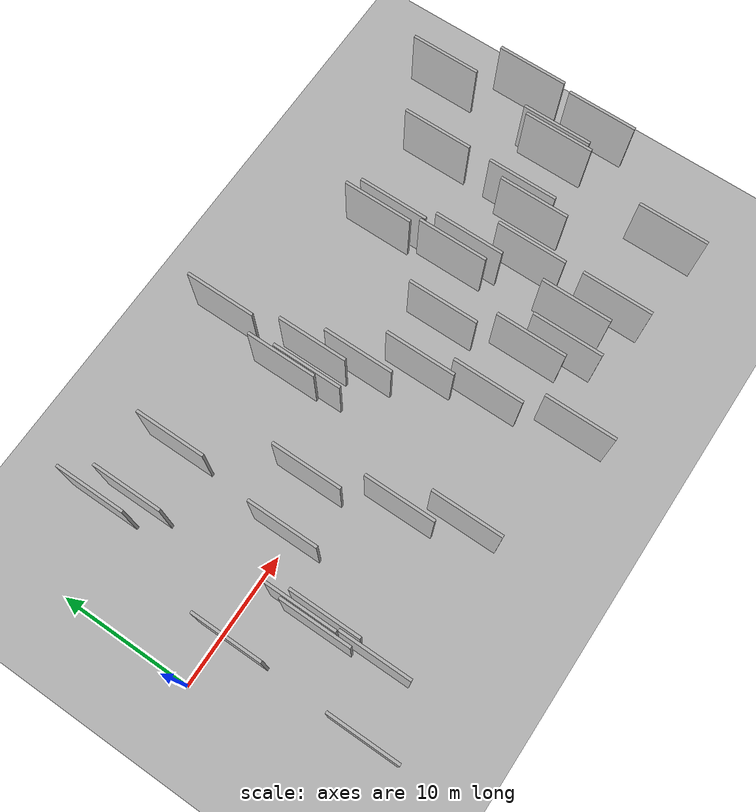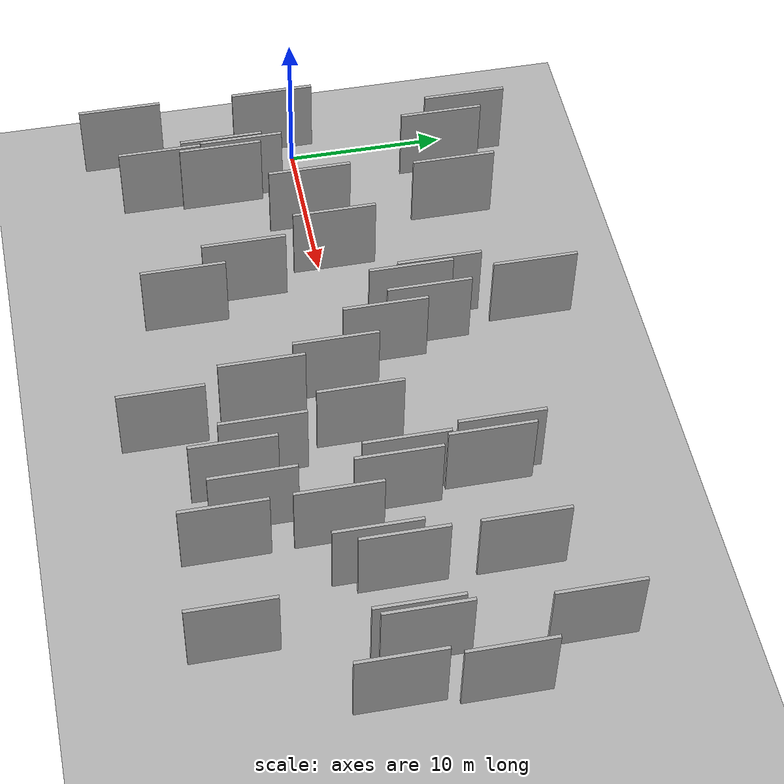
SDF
<?xml version="1.0" encoding="utf-8"?>

<sdf version="1.6">

   <world name="default">

      <gui fullscreen="0">

         <camera name="user_camera">

            <pose>-15 0 4.57585 0 0 0</pose>

            <view_controller>orbit</view_controller>

         </camera>

      </gui>

      <scene>

         <sky>

           <clouds>

             <speed>12</speed>

           </clouds>

         </sky>

         <ambient>0.4 0.4 0.4 1</ambient>

         <background>0.7 0.7 0.7 1</background>

         <shadows>1</shadows>

      </scene>

      <gravity>0 0 -9.8066</gravity>

      <magnetic_field>6e-06 2.3e-05 -4.2e-05</magnetic_field>

      <physics default="0" name="default_physics" type="ode">

         <ode>

            <solver>

               <type>quick</type>

               <iters>10</iters>

               <sor>1.0</sor>

               <use_dynamic_moi_rescaling>0</use_dynamic_moi_rescaling>

            </solver>

            <constraints>

               <cfm>0</cfm>

               <erp>0.2</erp>

               <contact_max_correcting_vel>100</contact_max_correcting_vel>

               <contact_surface_layer>0.001</contact_surface_layer>

            </constraints>

         </ode>

         <max_step_size>0.004</max_step_size>

         <real_time_factor>1</real_time_factor>

         <real_time_update_rate>250</real_time_update_rate>

      </physics>

      <light name="sun" type="directional">

         <cast_shadows>1</cast_shadows>

         <pose>0 0 10 0 0 0</pose>

         <diffuse>0.8 0.8 0.8 1</diffuse>

         <specular>0.2 0.2 0.2 1</specular>

         <attenuation>

            <range>1000</range>

            <constant>0.9</constant>

            <linear>0.01</linear>

            <quadratic>0.001</quadratic>

         </attenuation>

         <direction>-0.5 0.1 -0.9</direction>

      </light>

      <include>

         <name>ground_plane_1</name>

         <uri>model://HANNAS_ground_plane</uri>

         <pose>0 0 0  0 0 0</pose>

      </include>

      <include>

         <name>ground_plane_2</name>

         <uri>model://HANNAS_ground_plane</uri>

         <pose>100 0 0  0 0 0</pose>

      </include>

      <model name="HANNAS_wall_1">

         <static>1</static>

         <pose frame="">45.5074 3.5832 5.0 0.000000 0.000000 1.570796</pose>

         <link name="link">

            <pose frame="">0 0 2.50 0 0 0</pose>

            <collision name="collision">

               <geometry>

                  <box>

                     <size>5.00 0.2 5.00</size>

                  </box>

               </geometry>

               <max_contacts>10</max_contacts>

               <surface>

                  <contact>

                     <ode/>

                  </contact>

                  <bounce/>

                  <friction>

                     <torsional>

                        <ode/>

                     </torsional>

                     <ode/>

                  </friction>

               </surface>

            </collision>

            <visual name="visual">

               <cast_shadows>0</cast_shadows>

               <geometry>

                  <box>

                     <size>5.00 0.2 5.00</size>

                  </box>

               </geometry>

               <material>

                  <script>

                     <uri>model://HANNAS_wall/materials/scripts</uri>

                     <uri>model://HANNAS_wall/materials/textures</uri>

                     <name>vrc/HANNAS_wall</name>

                  </script>

               </material>

            </visual>

            <self_collide>0</self_collide>

            <enable_wind>0</enable_wind>

            <kinematic>0</kinematic>

         </link>

      </model>

      <model name="HANNAS_wall_2">

         <static>1</static>

         <pose frame="">19.2828 5.5503 5.0 0.000000 0.000000 1.570796</pose>

         <link name="link">

            <pose frame="">0 0 2.50 0 0 0</pose>

            <collision name="collision">

               <geometry>

                  <box>

                     <size>5.00 0.2 5.00</size>

                  </box>

               </geometry>

               <max_contacts>10</max_contacts>

               <surface>

                  <contact>

                     <ode/>

                  </contact>

                  <bounce/>

                  <friction>

                     <torsional>

                        <ode/>

                     </torsional>

                     <ode/>

                  </friction>

               </surface>

            </collision>

            <visual name="visual">

               <cast_shadows>0</cast_shadows>

               <geometry>

                  <box>

                     <size>5.00 0.2 5.00</size>

                  </box>

               </geometry>

               <material>

                  <script>

                     <uri>model://HANNAS_wall/materials/scripts</uri>

                     <uri>model://HANNAS_wall/materials/textures</uri>

                     <name>vrc/HANNAS_wall</name>

                  </script>

               </material>

            </visual>

            <self_collide>0</self_collide>

            <enable_wind>0</enable_wind>

            <kinematic>0</kinematic>

         </link>

      </model>

      <model name="HANNAS_wall_3">

         <static>1</static>

         <pose frame="">42.5589 -0.1111 5.0 0.000000 0.000000 1.570796</pose>

         <link name="link">

            <pose frame="">0 0 2.50 0 0 0</pose>

            <collision name="collision">

               <geometry>

                  <box>

                     <size>5.00 0.2 5.00</size>

                  </box>

               </geometry>

               <max_contacts>10</max_contacts>

               <surface>

                  <contact>

                     <ode/>

                  </contact>

                  <bounce/>

                  <friction>

                     <torsional>

                        <ode/>

                     </torsional>

                     <ode/>

                  </friction>

               </surface>

            </collision>

            <visual name="visual">

               <cast_shadows>0</cast_shadows>

               <geometry>

                  <box>

                     <size>5.00 0.2 5.00</size>

                  </box>

               </geometry>

               <material>

                  <script>

                     <uri>model://HANNAS_wall/materials/scripts</uri>

                     <uri>model://HANNAS_wall/materials/textures</uri>

                     <name>vrc/HANNAS_wall</name>

                  </script>

               </material>

            </visual>

            <self_collide>0</self_collide>

            <enable_wind>0</enable_wind>

            <kinematic>0</kinematic>

         </link>

      </model>

      <model name="HANNAS_wall_4">

         <static>1</static>

         <pose frame="">10.7741 -0.6381 5.0 0.000000 0.000000 1.570796</pose>

         <link name="link">

            <pose frame="">0 0 2.50 0 0 0</pose>

            <collision name="collision">

               <geometry>

                  <box>

                     <size>5.00 0.2 5.00</size>

                  </box>

               </geometry>

               <max_contacts>10</max_contacts>

               <surface>

                  <contact>

                     <ode/>

                  </contact>

                  <bounce/>

                  <friction>

                     <torsional>

                        <ode/>

                     </torsional>

                     <ode/>

                  </friction>

               </surface>

            </collision>

            <visual name="visual">

               <cast_shadows>0</cast_shadows>

               <geometry>

                  <box>

                     <size>5.00 0.2 5.00</size>

                  </box>

               </geometry>

               <material>

                  <script>

                     <uri>model://HANNAS_wall/materials/scripts</uri>

                     <uri>model://HANNAS_wall/materials/textures</uri>

                     <name>vrc/HANNAS_wall</name>

                  </script>

               </material>

            </visual>

            <self_collide>0</self_collide>

            <enable_wind>0</enable_wind>

            <kinematic>0</kinematic>

         </link>

      </model>

      <model name="HANNAS_wall_5">

         <static>1</static>

         <pose frame="">6.0708 9.9913 5.0 0.000000 0.000000 1.570796</pose>

         <link name="link">

            <pose frame="">0 0 2.50 0 0 0</pose>

            <collision name="collision">

               <geometry>

                  <box>

                     <size>5.00 0.2 5.00</size>

                  </box>

               </geometry>

               <max_contacts>10</max_contacts>

               <surface>

                  <contact>

                     <ode/>

                  </contact>

                  <bounce/>

                  <friction>

                     <torsional>

                        <ode/>

                     </torsional>

                     <ode/>

                  </friction>

               </surface>

            </collision>

            <visual name="visual">

               <cast_shadows>0</cast_shadows>

               <geometry>

                  <box>

                     <size>5.00 0.2 5.00</size>

                  </box>

               </geometry>

               <material>

                  <script>

                     <uri>model://HANNAS_wall/materials/scripts</uri>

                     <uri>model://HANNAS_wall/materials/textures</uri>

                     <name>vrc/HANNAS_wall</name>

                  </script>

               </material>

            </visual>

            <self_collide>0</self_collide>

            <enable_wind>0</enable_wind>

            <kinematic>0</kinematic>

         </link>

      </model>

      <model name="HANNAS_wall_6">

         <static>1</static>

         <pose frame="">25.0074 -5.8904 5.0 0.000000 0.000000 1.570796</pose>

         <link name="link">

            <pose frame="">0 0 2.50 0 0 0</pose>

            <collision name="collision">

               <geometry>

                  <box>

                     <size>5.00 0.2 5.00</size>

                  </box>

               </geometry>

               <max_contacts>10</max_contacts>

               <surface>

                  <contact>

                     <ode/>

                  </contact>

                  <bounce/>

                  <friction>

                     <torsional>

                        <ode/>

                     </torsional>

                     <ode/>

                  </friction>

               </surface>

            </collision>

            <visual name="visual">

               <cast_shadows>0</cast_shadows>

               <geometry>

                  <box>

                     <size>5.00 0.2 5.00</size>

                  </box>

               </geometry>

               <material>

                  <script>

                     <uri>model://HANNAS_wall/materials/scripts</uri>

                     <uri>model://HANNAS_wall/materials/textures</uri>

                     <name>vrc/HANNAS_wall</name>

                  </script>

               </material>

            </visual>

            <self_collide>0</self_collide>

            <enable_wind>0</enable_wind>

            <kinematic>0</kinematic>

         </link>

      </model>

      <model name="HANNAS_wall_7">

         <static>1</static>

         <pose frame="">20.3964 11.0199 5.0 0.000000 0.000000 1.570796</pose>

         <link name="link">

            <pose frame="">0 0 2.50 0 0 0</pose>

            <collision name="collision">

               <geometry>

                  <box>

                     <size>5.00 0.2 5.00</size>

                  </box>

               </geometry>

               <max_contacts>10</max_contacts>

               <surface>

                  <contact>

                     <ode/>

                  </contact>

                  <bounce/>

                  <friction>

                     <torsional>

                        <ode/>

                     </torsional>

                     <ode/>

                  </friction>

               </surface>

            </collision>

            <visual name="visual">

               <cast_shadows>0</cast_shadows>

               <geometry>

                  <box>

                     <size>5.00 0.2 5.00</size>

                  </box>

               </geometry>

               <material>

                  <script>

                     <uri>model://HANNAS_wall/materials/scripts</uri>

                     <uri>model://HANNAS_wall/materials/textures</uri>

                     <name>vrc/HANNAS_wall</name>

                  </script>

               </material>

            </visual>

            <self_collide>0</self_collide>

            <enable_wind>0</enable_wind>

            <kinematic>0</kinematic>

         </link>

      </model>

      <model name="HANNAS_wall_8">

         <static>1</static>

         <pose frame="">31.2553 6.4635 5.0 0.000000 0.000000 1.570796</pose>

         <link name="link">

            <pose frame="">0 0 2.50 0 0 0</pose>

            <collision name="collision">

               <geometry>

                  <box>

                     <size>5.00 0.2 5.00</size>

                  </box>

               </geometry>

               <max_contacts>10</max_contacts>

               <surface>

                  <contact>

                     <ode/>

                  </contact>

                  <bounce/>

                  <friction>

                     <torsional>

                        <ode/>

                     </torsional>

                     <ode/>

                  </friction>

               </surface>

            </collision>

            <visual name="visual">

               <cast_shadows>0</cast_shadows>

               <geometry>

                  <box>

                     <size>5.00 0.2 5.00</size>

                  </box>

               </geometry>

               <material>

                  <script>

                     <uri>model://HANNAS_wall/materials/scripts</uri>

                     <uri>model://HANNAS_wall/materials/textures</uri>

                     <name>vrc/HANNAS_wall</name>

                  </script>

               </material>

            </visual>

            <self_collide>0</self_collide>

            <enable_wind>0</enable_wind>

            <kinematic>0</kinematic>

         </link>

      </model>

      <model name="HANNAS_wall_9">

         <static>1</static>

         <pose frame="">7.9255 -5.6642 5.0 0.000000 0.000000 1.570796</pose>

         <link name="link">

            <pose frame="">0 0 2.50 0 0 0</pose>

            <collision name="collision">

               <geometry>

                  <box>

                     <size>5.00 0.2 5.00</size>

                  </box>

               </geometry>

               <max_contacts>10</max_contacts>

               <surface>

                  <contact>

                     <ode/>

                  </contact>

                  <bounce/>

                  <friction>

                     <torsional>

                        <ode/>

                     </torsional>

                     <ode/>

                  </friction>

               </surface>

            </collision>

            <visual name="visual">

               <cast_shadows>0</cast_shadows>

               <geometry>

                  <box>

                     <size>5.00 0.2 5.00</size>

                  </box>

               </geometry>

               <material>

                  <script>

                     <uri>model://HANNAS_wall/materials/scripts</uri>

                     <uri>model://HANNAS_wall/materials/textures</uri>

                     <name>vrc/HANNAS_wall</name>

                  </script>

               </material>

            </visual>

            <self_collide>0</self_collide>

            <enable_wind>0</enable_wind>

            <kinematic>0</kinematic>

         </link>

      </model>

      <model name="HANNAS_wall_10">

         <static>1</static>

         <pose frame="">37.8838 6.2084 5.0 0.000000 0.000000 1.570796</pose>

         <link name="link">

            <pose frame="">0 0 2.50 0 0 0</pose>

            <collision name="collision">

               <geometry>

                  <box>

                     <size>5.00 0.2 5.00</size>

                  </box>

               </geometry>

               <max_contacts>10</max_contacts>

               <surface>

                  <contact>

                     <ode/>

                  </contact>

                  <bounce/>

                  <friction>

                     <torsional>

                        <ode/>

                     </torsional>

                     <ode/>

                  </friction>

               </surface>

            </collision>

            <visual name="visual">

               <cast_shadows>0</cast_shadows>

               <geometry>

                  <box>

                     <size>5.00 0.2 5.00</size>

                  </box>

               </geometry>

               <material>

                  <script>

                     <uri>model://HANNAS_wall/materials/scripts</uri>

                     <uri>model://HANNAS_wall/materials/textures</uri>

                     <name>vrc/HANNAS_wall</name>

                  </script>

               </material>

            </visual>

            <self_collide>0</self_collide>

            <enable_wind>0</enable_wind>

            <kinematic>0</kinematic>

         </link>

      </model>

      <model name="HANNAS_wall_11">

         <static>1</static>

         <pose frame="">21.1970 4.5514 5.0 0.000000 0.000000 1.570796</pose>

         <link name="link">

            <pose frame="">0 0 2.50 0 0 0</pose>

            <collision name="collision">

               <geometry>

                  <box>

                     <size>5.00 0.2 5.00</size>

                  </box>

               </geometry>

               <max_contacts>10</max_contacts>

               <surface>

                  <contact>

                     <ode/>

                  </contact>

                  <bounce/>

                  <friction>

                     <torsional>

                        <ode/>

                     </torsional>

                     <ode/>

                  </friction>

               </surface>

            </collision>

            <visual name="visual">

               <cast_shadows>0</cast_shadows>

               <geometry>

                  <box>

                     <size>5.00 0.2 5.00</size>

                  </box>

               </geometry>

               <material>

                  <script>

                     <uri>model://HANNAS_wall/materials/scripts</uri>

                     <uri>model://HANNAS_wall/materials/textures</uri>

                     <name>vrc/HANNAS_wall</name>

                  </script>

               </material>

            </visual>

            <self_collide>0</self_collide>

            <enable_wind>0</enable_wind>

            <kinematic>0</kinematic>

         </link>

      </model>

      <model name="HANNAS_wall_12">

         <static>1</static>

         <pose frame="">32.5677 -7.6136 5.0 0.000000 0.000000 1.570796</pose>

         <link name="link">

            <pose frame="">0 0 2.50 0 0 0</pose>

            <collision name="collision">

               <geometry>

                  <box>

                     <size>5.00 0.2 5.00</size>

                  </box>

               </geometry>

               <max_contacts>10</max_contacts>

               <surface>

                  <contact>

                     <ode/>

                  </contact>

                  <bounce/>

                  <friction>

                     <torsional>

                        <ode/>

                     </torsional>

                     <ode/>

                  </friction>

               </surface>

            </collision>

            <visual name="visual">

               <cast_shadows>0</cast_shadows>

               <geometry>

                  <box>

                     <size>5.00 0.2 5.00</size>

                  </box>

               </geometry>

               <material>

                  <script>

                     <uri>model://HANNAS_wall/materials/scripts</uri>

                     <uri>model://HANNAS_wall/materials/textures</uri>

                     <name>vrc/HANNAS_wall</name>

                  </script>

               </material>

            </visual>

            <self_collide>0</self_collide>

            <enable_wind>0</enable_wind>

            <kinematic>0</kinematic>

         </link>

      </model>

      <model name="HANNAS_wall_13">

         <static>1</static>

         <pose frame="">3.5260 -11.3198 5.0 0.000000 0.000000 1.570796</pose>

         <link name="link">

            <pose frame="">0 0 2.50 0 0 0</pose>

            <collision name="collision">

               <geometry>

                  <box>

                     <size>5.00 0.2 5.00</size>

                  </box>

               </geometry>

               <max_contacts>10</max_contacts>

               <surface>

                  <contact>

                     <ode/>

                  </contact>

                  <bounce/>

                  <friction>

                     <torsional>

                        <ode/>

                     </torsional>

                     <ode/>

                  </friction>

               </surface>

            </collision>

            <visual name="visual">

               <cast_shadows>0</cast_shadows>

               <geometry>

                  <box>

                     <size>5.00 0.2 5.00</size>

                  </box>

               </geometry>

               <material>

                  <script>

                     <uri>model://HANNAS_wall/materials/scripts</uri>

                     <uri>model://HANNAS_wall/materials/textures</uri>

                     <name>vrc/HANNAS_wall</name>

                  </script>

               </material>

            </visual>

            <self_collide>0</self_collide>

            <enable_wind>0</enable_wind>

            <kinematic>0</kinematic>

         </link>

      </model>

      <model name="HANNAS_wall_14">

         <static>1</static>

         <pose frame="">7.3637 8.2334 5.0 0.000000 0.000000 1.570796</pose>

         <link name="link">

            <pose frame="">0 0 2.50 0 0 0</pose>

            <collision name="collision">

               <geometry>

                  <box>

                     <size>5.00 0.2 5.00</size>

                  </box>

               </geometry>

               <max_contacts>10</max_contacts>

               <surface>

                  <contact>

                     <ode/>

                  </contact>

                  <bounce/>

                  <friction>

                     <torsional>

                        <ode/>

                     </torsional>

                     <ode/>

                  </friction>

               </surface>

            </collision>

            <visual name="visual">

               <cast_shadows>0</cast_shadows>

               <geometry>

                  <box>

                     <size>5.00 0.2 5.00</size>

                  </box>

               </geometry>

               <material>

                  <script>

                     <uri>model://HANNAS_wall/materials/scripts</uri>

                     <uri>model://HANNAS_wall/materials/textures</uri>

                     <name>vrc/HANNAS_wall</name>

                  </script>

               </material>

            </visual>

            <self_collide>0</self_collide>

            <enable_wind>0</enable_wind>

            <kinematic>0</kinematic>

         </link>

      </model>

      <model name="HANNAS_wall_15">

         <static>1</static>

         <pose frame="">7.4518 -4.3035 5.0 0.000000 0.000000 1.570796</pose>

         <link name="link">

            <pose frame="">0 0 2.50 0 0 0</pose>

            <collision name="collision">

               <geometry>

                  <box>

                     <size>5.00 0.2 5.00</size>

                  </box>

               </geometry>

               <max_contacts>10</max_contacts>

               <surface>

                  <contact>

                     <ode/>

                  </contact>

                  <bounce/>

                  <friction>

                     <torsional>

                        <ode/>

                     </torsional>

                     <ode/>

                  </friction>

               </surface>

            </collision>

            <visual name="visual">

               <cast_shadows>0</cast_shadows>

               <geometry>

                  <box>

                     <size>5.00 0.2 5.00</size>

                  </box>

               </geometry>

               <material>

                  <script>

                     <uri>model://HANNAS_wall/materials/scripts</uri>

                     <uri>model://HANNAS_wall/materials/textures</uri>

                     <name>vrc/HANNAS_wall</name>

                  </script>

               </material>

            </visual>

            <self_collide>0</self_collide>

            <enable_wind>0</enable_wind>

            <kinematic>0</kinematic>

         </link>

      </model>

      <model name="HANNAS_wall_16">

         <static>1</static>

         <pose frame="">34.3862 -3.2187 5.0 0.000000 0.000000 1.570796</pose>

         <link name="link">

            <pose frame="">0 0 2.50 0 0 0</pose>

            <collision name="collision">

               <geometry>

                  <box>

                     <size>5.00 0.2 5.00</size>

                  </box>

               </geometry>

               <max_contacts>10</max_contacts>

               <surface>

                  <contact>

                     <ode/>

                  </contact>

                  <bounce/>

                  <friction>

                     <torsional>

                        <ode/>

                     </torsional>

                     <ode/>

                  </friction>

               </surface>

            </collision>

            <visual name="visual">

               <cast_shadows>0</cast_shadows>

               <geometry>

                  <box>

                     <size>5.00 0.2 5.00</size>

                  </box>

               </geometry>

               <material>

                  <script>

                     <uri>model://HANNAS_wall/materials/scripts</uri>

                     <uri>model://HANNAS_wall/materials/textures</uri>

                     <name>vrc/HANNAS_wall</name>

                  </script>

               </material>

            </visual>

            <self_collide>0</self_collide>

            <enable_wind>0</enable_wind>

            <kinematic>0</kinematic>

         </link>

      </model>

      <model name="HANNAS_wall_17">

         <static>1</static>

         <pose frame="">27.8145 -0.7787 5.0 0.000000 0.000000 1.570796</pose>

         <link name="link">

            <pose frame="">0 0 2.50 0 0 0</pose>

            <collision name="collision">

               <geometry>

                  <box>

                     <size>5.00 0.2 5.00</size>

                  </box>

               </geometry>

               <max_contacts>10</max_contacts>

               <surface>

                  <contact>

                     <ode/>

                  </contact>

                  <bounce/>

                  <friction>

                     <torsional>

                        <ode/>

                     </torsional>

                     <ode/>

                  </friction>

               </surface>

            </collision>

            <visual name="visual">

               <cast_shadows>0</cast_shadows>

               <geometry>

                  <box>

                     <size>5.00 0.2 5.00</size>

                  </box>

               </geometry>

               <material>

                  <script>

                     <uri>model://HANNAS_wall/materials/scripts</uri>

                     <uri>model://HANNAS_wall/materials/textures</uri>

                     <name>vrc/HANNAS_wall</name>

                  </script>

               </material>

            </visual>

            <self_collide>0</self_collide>

            <enable_wind>0</enable_wind>

            <kinematic>0</kinematic>

         </link>

      </model>

      <model name="HANNAS_wall_18">

         <static>1</static>

         <pose frame="">34.4363 -9.4818 5.0 0.000000 0.000000 1.570796</pose>

         <link name="link">

            <pose frame="">0 0 2.50 0 0 0</pose>

            <collision name="collision">

               <geometry>

                  <box>

                     <size>5.00 0.2 5.00</size>

                  </box>

               </geometry>

               <max_contacts>10</max_contacts>

               <surface>

                  <contact>

                     <ode/>

                  </contact>

                  <bounce/>

                  <friction>

                     <torsional>

                        <ode/>

                     </torsional>

                     <ode/>

                  </friction>

               </surface>

            </collision>

            <visual name="visual">

               <cast_shadows>0</cast_shadows>

               <geometry>

                  <box>

                     <size>5.00 0.2 5.00</size>

                  </box>

               </geometry>

               <material>

                  <script>

                     <uri>model://HANNAS_wall/materials/scripts</uri>

                     <uri>model://HANNAS_wall/materials/textures</uri>

                     <name>vrc/HANNAS_wall</name>

                  </script>

               </material>

            </visual>

            <self_collide>0</self_collide>

            <enable_wind>0</enable_wind>

            <kinematic>0</kinematic>

         </link>

      </model>

      <model name="HANNAS_wall_19">

         <static>1</static>

         <pose frame="">45.1279 -2.0308 5.0 0.000000 0.000000 1.570796</pose>

         <link name="link">

            <pose frame="">0 0 2.50 0 0 0</pose>

            <collision name="collision">

               <geometry>

                  <box>

                     <size>5.00 0.2 5.00</size>

                  </box>

               </geometry>

               <max_contacts>10</max_contacts>

               <surface>

                  <contact>

                     <ode/>

                  </contact>

                  <bounce/>

                  <friction>

                     <torsional>

                        <ode/>

                     </torsional>

                     <ode/>

                  </friction>

               </surface>

            </collision>

            <visual name="visual">

               <cast_shadows>0</cast_shadows>

               <geometry>

                  <box>

                     <size>5.00 0.2 5.00</size>

                  </box>

               </geometry>

               <material>

                  <script>

                     <uri>model://HANNAS_wall/materials/scripts</uri>

                     <uri>model://HANNAS_wall/materials/textures</uri>

                     <name>vrc/HANNAS_wall</name>

                  </script>

               </material>

            </visual>

            <self_collide>0</self_collide>

            <enable_wind>0</enable_wind>

            <kinematic>0</kinematic>

         </link>

      </model>

      <model name="HANNAS_wall_20">

         <static>1</static>

         <pose frame="">37.1782 -1.6593 5.0 0.000000 0.000000 1.570796</pose>

         <link name="link">

            <pose frame="">0 0 2.50 0 0 0</pose>

            <collision name="collision">

               <geometry>

                  <box>

                     <size>5.00 0.2 5.00</size>

                  </box>

               </geometry>

               <max_contacts>10</max_contacts>

               <surface>

                  <contact>

                     <ode/>

                  </contact>

                  <bounce/>

                  <friction>

                     <torsional>

                        <ode/>

                     </torsional>

                     <ode/>

                  </friction>

               </surface>

            </collision>

            <visual name="visual">

               <cast_shadows>0</cast_shadows>

               <geometry>

                  <box>

                     <size>5.00 0.2 5.00</size>

                  </box>

               </geometry>

               <material>

                  <script>

                     <uri>model://HANNAS_wall/materials/scripts</uri>

                     <uri>model://HANNAS_wall/materials/textures</uri>

                     <name>vrc/HANNAS_wall</name>

                  </script>

               </material>

            </visual>

            <self_collide>0</self_collide>

            <enable_wind>0</enable_wind>

            <kinematic>0</kinematic>

         </link>

      </model>

      <model name="HANNAS_wall_21">

         <static>1</static>

         <pose frame="">37.8576 -0.3670 5.0 0.000000 0.000000 1.570796</pose>

         <link name="link">

            <pose frame="">0 0 2.50 0 0 0</pose>

            <collision name="collision">

               <geometry>

                  <box>

                     <size>5.00 0.2 5.00</size>

                  </box>

               </geometry>

               <max_contacts>10</max_contacts>

               <surface>

                  <contact>

                     <ode/>

                  </contact>

                  <bounce/>

                  <friction>

                     <torsional>

                        <ode/>

                     </torsional>

                     <ode/>

                  </friction>

               </surface>

            </collision>

            <visual name="visual">

               <cast_shadows>0</cast_shadows>

               <geometry>

                  <box>

                     <size>5.00 0.2 5.00</size>

                  </box>

               </geometry>

               <material>

                  <script>

                     <uri>model://HANNAS_wall/materials/scripts</uri>

                     <uri>model://HANNAS_wall/materials/textures</uri>

                     <name>vrc/HANNAS_wall</name>

                  </script>

               </material>

            </visual>

            <self_collide>0</self_collide>

            <enable_wind>0</enable_wind>

            <kinematic>0</kinematic>

         </link>

      </model>

      <model name="HANNAS_wall_22">

         <static>1</static>

         <pose frame="">26.1761 -11.7373 5.0 0.000000 0.000000 1.570796</pose>

         <link name="link">

            <pose frame="">0 0 2.50 0 0 0</pose>

            <collision name="collision">

               <geometry>

                  <box>

                     <size>5.00 0.2 5.00</size>

                  </box>

               </geometry>

               <max_contacts>10</max_contacts>

               <surface>

                  <contact>

                     <ode/>

                  </contact>

                  <bounce/>

                  <friction>

                     <torsional>

                        <ode/>

                     </torsional>

                     <ode/>

                  </friction>

               </surface>

            </collision>

            <visual name="visual">

               <cast_shadows>0</cast_shadows>

               <geometry>

                  <box>

                     <size>5.00 0.2 5.00</size>

                  </box>

               </geometry>

               <material>

                  <script>

                     <uri>model://HANNAS_wall/materials/scripts</uri>

                     <uri>model://HANNAS_wall/materials/textures</uri>

                     <name>vrc/HANNAS_wall</name>

                  </script>

               </material>

            </visual>

            <self_collide>0</self_collide>

            <enable_wind>0</enable_wind>

            <kinematic>0</kinematic>

         </link>

      </model>

      <model name="HANNAS_wall_23">

         <static>1</static>

         <pose frame="">29.0258 -6.4878 5.0 0.000000 0.000000 1.570796</pose>

         <link name="link">

            <pose frame="">0 0 2.50 0 0 0</pose>

            <collision name="collision">

               <geometry>

                  <box>

                     <size>5.00 0.2 5.00</size>

                  </box>

               </geometry>

               <max_contacts>10</max_contacts>

               <surface>

                  <contact>

                     <ode/>

                  </contact>

                  <bounce/>

                  <friction>

                     <torsional>

                        <ode/>

                     </torsional>

                     <ode/>

                  </friction>

               </surface>

            </collision>

            <visual name="visual">

               <cast_shadows>0</cast_shadows>

               <geometry>

                  <box>

                     <size>5.00 0.2 5.00</size>

                  </box>

               </geometry>

               <material>

                  <script>

                     <uri>model://HANNAS_wall/materials/scripts</uri>

                     <uri>model://HANNAS_wall/materials/textures</uri>

                     <name>vrc/HANNAS_wall</name>

                  </script>

               </material>

            </visual>

            <self_collide>0</self_collide>

            <enable_wind>0</enable_wind>

            <kinematic>0</kinematic>

         </link>

      </model>

      <model name="HANNAS_wall_24">

         <static>1</static>

         <pose frame="">32.6732 0.4080 5.0 0.000000 0.000000 1.570796</pose>

         <link name="link">

            <pose frame="">0 0 2.50 0 0 0</pose>

            <collision name="collision">

               <geometry>

                  <box>

                     <size>5.00 0.2 5.00</size>

                  </box>

               </geometry>

               <max_contacts>10</max_contacts>

               <surface>

                  <contact>

                     <ode/>

                  </contact>

                  <bounce/>

                  <friction>

                     <torsional>

                        <ode/>

                     </torsional>

                     <ode/>

                  </friction>

               </surface>

            </collision>

            <visual name="visual">

               <cast_shadows>0</cast_shadows>

               <geometry>

                  <box>

                     <size>5.00 0.2 5.00</size>

                  </box>

               </geometry>

               <material>

                  <script>

                     <uri>model://HANNAS_wall/materials/scripts</uri>

                     <uri>model://HANNAS_wall/materials/textures</uri>

                     <name>vrc/HANNAS_wall</name>

                  </script>

               </material>

            </visual>

            <self_collide>0</self_collide>

            <enable_wind>0</enable_wind>

            <kinematic>0</kinematic>

         </link>

      </model>

      <model name="HANNAS_wall_25">

         <static>1</static>

         <pose frame="">11.4430 8.1362 5.0 0.000000 0.000000 1.570796</pose>

         <link name="link">

            <pose frame="">0 0 2.50 0 0 0</pose>

            <collision name="collision">

               <geometry>

                  <box>

                     <size>5.00 0.2 5.00</size>

                  </box>

               </geometry>

               <max_contacts>10</max_contacts>

               <surface>

                  <contact>

                     <ode/>

                  </contact>

                  <bounce/>

                  <friction>

                     <torsional>

                        <ode/>

                     </torsional>

                     <ode/>

                  </friction>

               </surface>

            </collision>

            <visual name="visual">

               <cast_shadows>0</cast_shadows>

               <geometry>

                  <box>

                     <size>5.00 0.2 5.00</size>

                  </box>

               </geometry>

               <material>

                  <script>

                     <uri>model://HANNAS_wall/materials/scripts</uri>

                     <uri>model://HANNAS_wall/materials/textures</uri>

                     <name>vrc/HANNAS_wall</name>

                  </script>

               </material>

            </visual>

            <self_collide>0</self_collide>

            <enable_wind>0</enable_wind>

            <kinematic>0</kinematic>

         </link>

      </model>

      <model name="HANNAS_wall_26">

         <static>1</static>

         <pose frame="">7.1911 -5.4981 5.0 0.000000 0.000000 1.570796</pose>

         <link name="link">

            <pose frame="">0 0 2.50 0 0 0</pose>

            <collision name="collision">

               <geometry>

                  <box>

                     <size>5.00 0.2 5.00</size>

                  </box>

               </geometry>

               <max_contacts>10</max_contacts>

               <surface>

                  <contact>

                     <ode/>

                  </contact>

                  <bounce/>

                  <friction>

                     <torsional>

                        <ode/>

                     </torsional>

                     <ode/>

                  </friction>

               </surface>

            </collision>

            <visual name="visual">

               <cast_shadows>0</cast_shadows>

               <geometry>

                  <box>

                     <size>5.00 0.2 5.00</size>

                  </box>

               </geometry>

               <material>

                  <script>

                     <uri>model://HANNAS_wall/materials/scripts</uri>

                     <uri>model://HANNAS_wall/materials/textures</uri>

                     <name>vrc/HANNAS_wall</name>

                  </script>

               </material>

            </visual>

            <self_collide>0</self_collide>

            <enable_wind>0</enable_wind>

            <kinematic>0</kinematic>

         </link>

      </model>

      <model name="HANNAS_wall_27">

         <static>1</static>

         <pose frame="">22.1563 1.7724 5.0 0.000000 0.000000 1.570796</pose>

         <link name="link">

            <pose frame="">0 0 2.50 0 0 0</pose>

            <collision name="collision">

               <geometry>

                  <box>

                     <size>5.00 0.2 5.00</size>

                  </box>

               </geometry>

               <max_contacts>10</max_contacts>

               <surface>

                  <contact>

                     <ode/>

                  </contact>

                  <bounce/>

                  <friction>

                     <torsional>

                        <ode/>

                     </torsional>

                     <ode/>

                  </friction>

               </surface>

            </collision>

            <visual name="visual">

               <cast_shadows>0</cast_shadows>

               <geometry>

                  <box>

                     <size>5.00 0.2 5.00</size>

                  </box>

               </geometry>

               <material>

                  <script>

                     <uri>model://HANNAS_wall/materials/scripts</uri>

                     <uri>model://HANNAS_wall/materials/textures</uri>

                     <name>vrc/HANNAS_wall</name>

                  </script>

               </material>

            </visual>

            <self_collide>0</self_collide>

            <enable_wind>0</enable_wind>

            <kinematic>0</kinematic>

         </link>

      </model>

      <model name="HANNAS_wall_28">

         <static>1</static>

         <pose frame="">7.6157 -9.3491 5.0 0.000000 0.000000 1.570796</pose>

         <link name="link">

            <pose frame="">0 0 2.50 0 0 0</pose>

            <collision name="collision">

               <geometry>

                  <box>

                     <size>5.00 0.2 5.00</size>

                  </box>

               </geometry>

               <max_contacts>10</max_contacts>

               <surface>

                  <contact>

                     <ode/>

                  </contact>

                  <bounce/>

                  <friction>

                     <torsional>

                        <ode/>

                     </torsional>

                     <ode/>

                  </friction>

               </surface>

            </collision>

            <visual name="visual">

               <cast_shadows>0</cast_shadows>

               <geometry>

                  <box>

                     <size>5.00 0.2 5.00</size>

                  </box>

               </geometry>

               <material>

                  <script>

                     <uri>model://HANNAS_wall/materials/scripts</uri>

                     <uri>model://HANNAS_wall/materials/textures</uri>

                     <name>vrc/HANNAS_wall</name>

                  </script>

               </material>

            </visual>

            <self_collide>0</self_collide>

            <enable_wind>0</enable_wind>

            <kinematic>0</kinematic>

         </link>

      </model>

      <model name="HANNAS_wall_29">

         <static>1</static>

         <pose frame="">3.6870 -1.7901 5.0 0.000000 0.000000 1.570796</pose>

         <link name="link">

            <pose frame="">0 0 2.50 0 0 0</pose>

            <collision name="collision">

               <geometry>

                  <box>

                     <size>5.00 0.2 5.00</size>

                  </box>

               </geometry>

               <max_contacts>10</max_contacts>

               <surface>

                  <contact>

                     <ode/>

                  </contact>

                  <bounce/>

                  <friction>

                     <torsional>

                        <ode/>

                     </torsional>

                     <ode/>

                  </friction>

               </surface>

            </collision>

            <visual name="visual">

               <cast_shadows>0</cast_shadows>

               <geometry>

                  <box>

                     <size>5.00 0.2 5.00</size>

                  </box>

               </geometry>

               <material>

                  <script>

                     <uri>model://HANNAS_wall/materials/scripts</uri>

                     <uri>model://HANNAS_wall/materials/textures</uri>

                     <name>vrc/HANNAS_wall</name>

                  </script>

               </material>

            </visual>

            <self_collide>0</self_collide>

            <enable_wind>0</enable_wind>

            <kinematic>0</kinematic>

         </link>

      </model>

      <model name="HANNAS_wall_30">

         <static>1</static>

         <pose frame="">15.9208 -5.4724 5.0 0.000000 0.000000 1.570796</pose>

         <link name="link">

            <pose frame="">0 0 2.50 0 0 0</pose>

            <collision name="collision">

               <geometry>

                  <box>

                     <size>5.00 0.2 5.00</size>

                  </box>

               </geometry>

               <max_contacts>10</max_contacts>

               <surface>

                  <contact>

                     <ode/>

                  </contact>

                  <bounce/>

                  <friction>

                     <torsional>

                        <ode/>

                     </torsional>

                     <ode/>

                  </friction>

               </surface>

            </collision>

            <visual name="visual">

               <cast_shadows>0</cast_shadows>

               <geometry>

                  <box>

                     <size>5.00 0.2 5.00</size>

                  </box>

               </geometry>

               <material>

                  <script>

                     <uri>model://HANNAS_wall/materials/scripts</uri>

                     <uri>model://HANNAS_wall/materials/textures</uri>

                     <name>vrc/HANNAS_wall</name>

                  </script>

               </material>

            </visual>

            <self_collide>0</self_collide>

            <enable_wind>0</enable_wind>

            <kinematic>0</kinematic>

         </link>

      </model>

      <model name="HANNAS_wall_31">

         <static>1</static>

         <pose frame="">42.1534 -0.5037 5.0 0.000000 0.000000 1.570796</pose>

         <link name="link">

            <pose frame="">0 0 2.50 0 0 0</pose>

            <collision name="collision">

               <geometry>

                  <box>

                     <size>5.00 0.2 5.00</size>

                  </box>

               </geometry>

               <max_contacts>10</max_contacts>

               <surface>

                  <contact>

                     <ode/>

                  </contact>

                  <bounce/>

                  <friction>

                     <torsional>

                        <ode/>

                     </torsional>

                     <ode/>

                  </friction>

               </surface>

            </collision>

            <visual name="visual">

               <cast_shadows>0</cast_shadows>

               <geometry>

                  <box>

                     <size>5.00 0.2 5.00</size>

                  </box>

               </geometry>

               <material>

                  <script>

                     <uri>model://HANNAS_wall/materials/scripts</uri>

                     <uri>model://HANNAS_wall/materials/textures</uri>

                     <name>vrc/HANNAS_wall</name>

                  </script>

               </material>

            </visual>

            <self_collide>0</self_collide>

            <enable_wind>0</enable_wind>

            <kinematic>0</kinematic>

         </link>

      </model>

      <model name="HANNAS_wall_32">

         <static>1</static>

         <pose frame="">40.5823 -10.0062 5.0 0.000000 0.000000 1.570796</pose>

         <link name="link">

            <pose frame="">0 0 2.50 0 0 0</pose>

            <collision name="collision">

               <geometry>

                  <box>

                     <size>5.00 0.2 5.00</size>

                  </box>

               </geometry>

               <max_contacts>10</max_contacts>

               <surface>

                  <contact>

                     <ode/>

                  </contact>

                  <bounce/>

                  <friction>

                     <torsional>

                        <ode/>

                     </torsional>

                     <ode/>

                  </friction>

               </surface>

            </collision>

            <visual name="visual">

               <cast_shadows>0</cast_shadows>

               <geometry>

                  <box>

                     <size>5.00 0.2 5.00</size>

                  </box>

               </geometry>

               <material>

                  <script>

                     <uri>model://HANNAS_wall/materials/scripts</uri>

                     <uri>model://HANNAS_wall/materials/textures</uri>

                     <name>vrc/HANNAS_wall</name>

                  </script>

               </material>

            </visual>

            <self_collide>0</self_collide>

            <enable_wind>0</enable_wind>

            <kinematic>0</kinematic>

         </link>

      </model>

      <model name="HANNAS_wall_33">

         <static>1</static>

         <pose frame="">31.9877 5.7571 5.0 0.000000 0.000000 1.570796</pose>

         <link name="link">

            <pose frame="">0 0 2.50 0 0 0</pose>

            <collision name="collision">

               <geometry>

                  <box>

                     <size>5.00 0.2 5.00</size>

                  </box>

               </geometry>

               <max_contacts>10</max_contacts>

               <surface>

                  <contact>

                     <ode/>

                  </contact>

                  <bounce/>

                  <friction>

                     <torsional>

                        <ode/>

                     </torsional>

                     <ode/>

                  </friction>

               </surface>

            </collision>

            <visual name="visual">

               <cast_shadows>0</cast_shadows>

               <geometry>

                  <box>

                     <size>5.00 0.2 5.00</size>

                  </box>

               </geometry>

               <material>

                  <script>

                     <uri>model://HANNAS_wall/materials/scripts</uri>

                     <uri>model://HANNAS_wall/materials/textures</uri>

                     <name>vrc/HANNAS_wall</name>

                  </script>

               </material>

            </visual>

            <self_collide>0</self_collide>

            <enable_wind>0</enable_wind>

            <kinematic>0</kinematic>

         </link>

      </model>

      <model name="HANNAS_wall_34">

         <static>1</static>

         <pose frame="">19.5543 3.8142 5.0 0.000000 0.000000 1.570796</pose>

         <link name="link">

            <pose frame="">0 0 2.50 0 0 0</pose>

            <collision name="collision">

               <geometry>

                  <box>

                     <size>5.00 0.2 5.00</size>

                  </box>

               </geometry>

               <max_contacts>10</max_contacts>

               <surface>

                  <contact>

                     <ode/>

                  </contact>

                  <bounce/>

                  <friction>

                     <torsional>

                        <ode/>

                     </torsional>

                     <ode/>

                  </friction>

               </surface>

            </collision>

            <visual name="visual">

               <cast_shadows>0</cast_shadows>

               <geometry>

                  <box>

                     <size>5.00 0.2 5.00</size>

                  </box>

               </geometry>

               <material>

                  <script>

                     <uri>model://HANNAS_wall/materials/scripts</uri>

                     <uri>model://HANNAS_wall/materials/textures</uri>

                     <name>vrc/HANNAS_wall</name>

                  </script>

               </material>

            </visual>

            <self_collide>0</self_collide>

            <enable_wind>0</enable_wind>

            <kinematic>0</kinematic>

         </link>

      </model>

      <model name="HANNAS_wall_35">

         <static>1</static>

         <pose frame="">17.3806 -9.2627 5.0 0.000000 0.000000 1.570796</pose>

         <link name="link">

            <pose frame="">0 0 2.50 0 0 0</pose>

            <collision name="collision">

               <geometry>

                  <box>

                     <size>5.00 0.2 5.00</size>

                  </box>

               </geometry>

               <max_contacts>10</max_contacts>

               <surface>

                  <contact>

                     <ode/>

                  </contact>

                  <bounce/>

                  <friction>

                     <torsional>

                        <ode/>

                     </torsional>

                     <ode/>

                  </friction>

               </surface>

            </collision>

            <visual name="visual">

               <cast_shadows>0</cast_shadows>

               <geometry>

                  <box>

                     <size>5.00 0.2 5.00</size>

                  </box>

               </geometry>

               <material>

                  <script>

                     <uri>model://HANNAS_wall/materials/scripts</uri>

                     <uri>model://HANNAS_wall/materials/textures</uri>

                     <name>vrc/HANNAS_wall</name>

                  </script>

               </material>

            </visual>

            <self_collide>0</self_collide>

            <enable_wind>0</enable_wind>

            <kinematic>0</kinematic>

         </link>

      </model>

      <model name="HANNAS_wall_36">

         <static>1</static>

         <pose frame="">31.7227 1.0333 5.0 0.000000 0.000000 1.570796</pose>

         <link name="link">

            <pose frame="">0 0 2.50 0 0 0</pose>

            <collision name="collision">

               <geometry>

                  <box>

                     <size>5.00 0.2 5.00</size>

                  </box>

               </geometry>

               <max_contacts>10</max_contacts>

               <surface>

                  <contact>

                     <ode/>

                  </contact>

                  <bounce/>

                  <friction>

                     <torsional>

                        <ode/>

                     </torsional>

                     <ode/>

                  </friction>

               </surface>

            </collision>

            <visual name="visual">

               <cast_shadows>0</cast_shadows>

               <geometry>

                  <box>

                     <size>5.00 0.2 5.00</size>

                  </box>

               </geometry>

               <material>

                  <script>

                     <uri>model://HANNAS_wall/materials/scripts</uri>

                     <uri>model://HANNAS_wall/materials/textures</uri>

                     <name>vrc/HANNAS_wall</name>

                  </script>

               </material>

            </visual>

            <self_collide>0</self_collide>

            <enable_wind>0</enable_wind>

            <kinematic>0</kinematic>

         </link>

      </model>

      <model name="HANNAS_wall_37">

         <static>1</static>

         <pose frame="">24.1631 -1.4908 5.0 0.000000 0.000000 1.570796</pose>

         <link name="link">

            <pose frame="">0 0 2.50 0 0 0</pose>

            <collision name="collision">

               <geometry>

                  <box>

                     <size>5.00 0.2 5.00</size>

                  </box>

               </geometry>

               <max_contacts>10</max_contacts>

               <surface>

                  <contact>

                     <ode/>

                  </contact>

                  <bounce/>

                  <friction>

                     <torsional>

                        <ode/>

                     </torsional>

                     <ode/>

                  </friction>

               </surface>

            </collision>

            <visual name="visual">

               <cast_shadows>0</cast_shadows>

               <geometry>

                  <box>

                     <size>5.00 0.2 5.00</size>

                  </box>

               </geometry>

               <material>

                  <script>

                     <uri>model://HANNAS_wall/materials/scripts</uri>

                     <uri>model://HANNAS_wall/materials/textures</uri>

                     <name>vrc/HANNAS_wall</name>

                  </script>

               </material>

            </visual>

            <self_collide>0</self_collide>

            <enable_wind>0</enable_wind>

            <kinematic>0</kinematic>

         </link>

      </model>

      <model name="HANNAS_wall_38">

         <static>1</static>

         <pose frame="">30.3208 -8.3344 5.0 0.000000 0.000000 1.570796</pose>

         <link name="link">

            <pose frame="">0 0 2.50 0 0 0</pose>

            <collision name="collision">

               <geometry>

                  <box>

                     <size>5.00 0.2 5.00</size>

                  </box>

               </geometry>

               <max_contacts>10</max_contacts>

               <surface>

                  <contact>

                     <ode/>

                  </contact>

                  <bounce/>

                  <friction>

                     <torsional>

                        <ode/>

                     </torsional>

                     <ode/>

                  </friction>

               </surface>

            </collision>

            <visual name="visual">

               <cast_shadows>0</cast_shadows>

               <geometry>

                  <box>

                     <size>5.00 0.2 5.00</size>

                  </box>

               </geometry>

               <material>

                  <script>

                     <uri>model://HANNAS_wall/materials/scripts</uri>

                     <uri>model://HANNAS_wall/materials/textures</uri>

                     <name>vrc/HANNAS_wall</name>

                  </script>

               </material>

            </visual>

            <self_collide>0</self_collide>

            <enable_wind>0</enable_wind>

            <kinematic>0</kinematic>

         </link>

      </model>

      <model name="HANNAS_wall_39">

         <static>1</static>

         <pose frame="">42.9603 8.8840 5.0 0.000000 0.000000 1.570796</pose>

         <link name="link">

            <pose frame="">0 0 2.50 0 0 0</pose>

            <collision name="collision">

               <geometry>

                  <box>

                     <size>5.00 0.2 5.00</size>

                  </box>

               </geometry>

               <max_contacts>10</max_contacts>

               <surface>

                  <contact>

                     <ode/>

                  </contact>

                  <bounce/>

                  <friction>

                     <torsional>

                        <ode/>

                     </torsional>

                     <ode/>

                  </friction>

               </surface>

            </collision>

            <visual name="visual">

               <cast_shadows>0</cast_shadows>

               <geometry>

                  <box>

                     <size>5.00 0.2 5.00</size>

                  </box>

               </geometry>

               <material>

                  <script>

                     <uri>model://HANNAS_wall/materials/scripts</uri>

                     <uri>model://HANNAS_wall/materials/textures</uri>

                     <name>vrc/HANNAS_wall</name>

                  </script>

               </material>

            </visual>

            <self_collide>0</self_collide>

            <enable_wind>0</enable_wind>

            <kinematic>0</kinematic>

         </link>

      </model>

      <model name="HANNAS_wall_40">

         <static>1</static>

         <pose frame="">14.4203 0.2172 5.0 0.000000 0.000000 1.570796</pose>

         <link name="link">

            <pose frame="">0 0 2.50 0 0 0</pose>

            <collision name="collision">

               <geometry>

                  <box>

                     <size>5.00 0.2 5.00</size>

                  </box>

               </geometry>

               <max_contacts>10</max_contacts>

               <surface>

                  <contact>

                     <ode/>

                  </contact>

                  <bounce/>

                  <friction>

                     <torsional>

                        <ode/>

                     </torsional>

                     <ode/>

                  </friction>

               </surface>

            </collision>

            <visual name="visual">

               <cast_shadows>0</cast_shadows>

               <geometry>

                  <box>

                     <size>5.00 0.2 5.00</size>

                  </box>

               </geometry>

               <material>

                  <script>

                     <uri>model://HANNAS_wall/materials/scripts</uri>

                     <uri>model://HANNAS_wall/materials/textures</uri>

                     <name>vrc/HANNAS_wall</name>

                  </script>

               </material>

            </visual>

            <self_collide>0</self_collide>

            <enable_wind>0</enable_wind>

            <kinematic>0</kinematic>

         </link>

      </model>

   </world>

</sdf>
